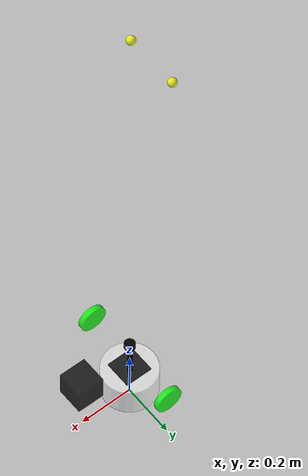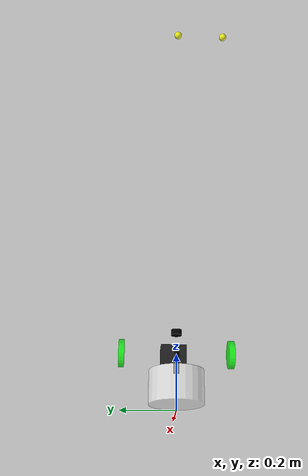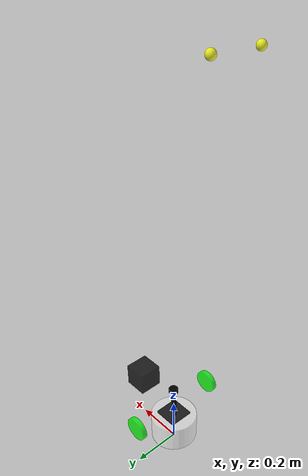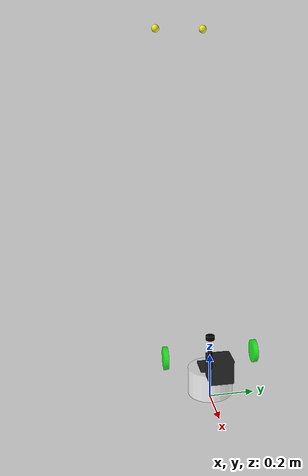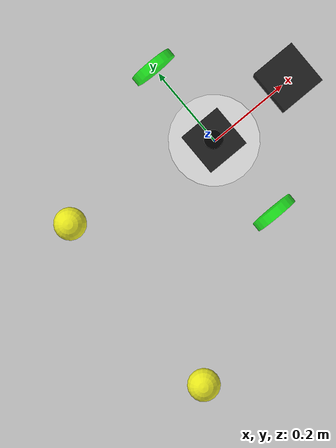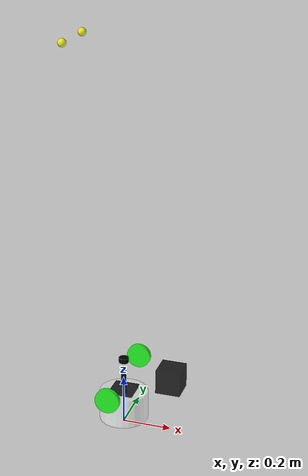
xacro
<?xml version="1.0"?>
<robot xmlns:xacro="http://www.ros.org/wiki/xacro" name="bot">

<xacro:include filename="$(find description)/urdf/bot/base.urdf.xacro"/>
<xacro:include filename="$(find description)/urdf/bot/sensors/laser.urdf.xacro"/>
<xacro:include filename="$(find description)/urdf/bot/sensors/camera.urdf.xacro"/>
<xacro:include filename="$(find description)/urdf/bot/sensors/imu.urdf.xacro"/>
<xacro:include filename="$(find description)/urdf/bot/actuators/wheel.urdf.xacro"/>
<xacro:include filename="$(find description)/urdf/bot/actuators/caster.urdf.xacro"/>
<xacro:include filename="$(find description)/urdf/bot/plugin/common_inertial.urdf.xacro"/>
<xacro:include filename="$(find description)/urdf/bot/plugin/gz_control_plugin.xacro"/>
<xacro:include filename="$(find description)/urdf/bot/plugin/gz_sensors_plugin.xacro"/>

<xacro:base_xacro length="0.12" radius="0.10"/>
<xacro:lidar_xacro xyz="0 0 0.1" />
<xacro:camera_xacro xyz="0.10 0 0.075" />
<xacro:imu_xacro xyz="0 0 0.01" />
<xacro:wheel_xacro wheel_name="wheel_left" xyz="0 0.1 0.06" />
<xacro:wheel_xacro wheel_name="wheel_right" xyz="0 -0.1 0.06" />
<xacro:caster_xacro caster_name="caster_front" xyz="-0.08 0 0.76" />
<xacro:caster_xacro caster_name="caster_right" xyz="-0.08 -0.1 0.76" />

<xacro:gazebo_control_plugin/>
<xacro:gazebo_sensor_plugin/>

</robot>

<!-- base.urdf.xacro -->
<robot xmlns:xacro="http://www.ros.org/wiki/xacro">
    <xacro:macro name="base_xacro" params="length radius">
        <!-- 虚拟 -->
        <link name="base_foot_print"/>
        <link name="base_link">
            <visual>
                <origin rpy="0 0 0" xyz="0 0 0"/>
                <geometry>
                    <cylinder radius="${radius}" length="${length}"/>
                </geometry>
                <material name="white">
                    <color rgba="1.0 1.0 1.0 0.5"/>
                </material>
            </visual>
            <!-- 碰撞 -->
            <collision>
                <origin rpy="0 0 0" xyz="0 0 0"/>
                <geometry>
                    <cylinder radius="${radius}" length="${length}"/>
                </geometry>
                <material name="white">
                    <color rgba="1.0 1.0 1.0 0.5"/>
                </material>
            </collision>
            <!-- 质量(惯性) -->
            <xacro:cylinder_inertia m="1.0" r="${radius}" h="${length}"/>
        </link>
        <joint name="base_print_joint" type="fixed">
            <parent link="base_foot_print"/>
            <child link="base_link"/>
            <origin rpy="0 0 0" xyz="0 0 ${length/2+0.032-0.01}"/>
        </joint>
    </xacro:macro>
</robot>

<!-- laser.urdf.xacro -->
<robot xmlns:xacro="http://www.ros.org/wiki/xacro">
    <!-- 声明lidar -->
    <xacro:macro name="lidar_xacro" params="xyz">
    <!-- 支撑杆 -->
        <link name="lidar_bear_link">
            <visual>
                <origin rpy="0 0 0" xyz="0 0 0"/>
                <geometry>
                    <cylinder radius="0.01" length="0.10"/>
                </geometry>
                <material name="black">
                    <color rgba="0.0 0.0 0.0 1.0"/>
                </material>
            </visual>
        </link>
        <!-- 本体 -->
        <link name="lidar_link">
            <visual>
                <origin rpy="0 0 0" xyz="0 0 0"/>
                <geometry>
                    <cylinder radius="0.02" length="0.02"/>
                </geometry>
                <material name="black">
                    <color rgba="0.0 0.0 0.0 1.0"/>
                </material>
            </visual>
        </link>
        <!-- laser-支撑 -->
        <joint name="lidar_joint" type="fixed">
            <parent link="lidar_bear_link"/>
            <child link="lidar_link"/>
            <origin rpy="0 0 0" xyz="${xyz}"/>
        </joint>
        <!-- 支撑-base -->
        <joint name="lidar_bear_joint" type="fixed">
            <parent link="base_link"/>
            <child link="lidar_bear_link"/>
            <origin rpy="0 0 0" xyz="${xyz}"/>
        </joint>
        <gazebo reference="lidar_bear_link">
            <material>Gazebo/Black</material>
        </gazebo>
        <gazebo reference="lidar_link">
            <material>Gazebo/Black</material>
        </gazebo>
    </xacro:macro>
</robot>

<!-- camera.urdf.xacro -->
<robot xmlns:xacro="http://www.ros.org/wiki/xacro">
    <!-- 声明camera -->
    <xacro:macro name="camera_xacro" params="xyz">
        <link name="camera_link">
            <visual>
                <origin rpy="0 0 0" xyz="${xyz}"/>
                <geometry>
                    <box size="0.1 0.1 0.1"/>
                </geometry>
                <material name="black">
                    <color rgba="0.0 0.0 0.0 0.8"/>
                </material>
            </visual>
        </link>

        <joint name="camera_joint" type="fixed">
            <parent link="base_link"/>
            <child link="camera_link"/>
            <origin rpy="0 0 0" xyz="${xyz}"/>
        </joint>
    </xacro:macro>
</robot>

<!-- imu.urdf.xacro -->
<robot xmlns:xacro="http://www.ros.org/wiki/xacro">
    <xacro:macro name="imu_xacro" params="xyz">
        <link name="imu_link">
            <visual>
                <origin rpy="0 0 0" xyz="${xyz}"/>
                <geometry>
                    <box size="0.1 0.1 0.1"/>
                </geometry>
                <material name="black">
                    <color rgba="0.0 0.0 0.0 0.8"/>
                </material>
            </visual>
        </link>

        <joint name="imu_joint" type="fixed">
            <parent link="base_link"/>
            <child link="imu_link"/>
            <origin rpy="0 0 0" xyz="${xyz}"/>
        </joint>
    </xacro:macro>
</robot>

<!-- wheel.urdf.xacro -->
<robot xmlns:xacro="http://www.ros.org/wiki/xacro">
    <xacro:macro name="wheel_xacro" params="wheel_name xyz">
        <link name="${wheel_name}_link">
            <visual>
                <origin rpy="1.5708 0 0" xyz="${xyz}"/>
                <geometry>
                    <cylinder radius="0.05" length="0.02" />
                </geometry>
                <material name="green">
                    <color rgba="0.0 1.0 0.0 0.8"/>
                </material>
            </visual>
        </link>

        <joint name="${wheel_name}_joint" type="continuous">
            <parent link="base_link"/>
            <child link="${wheel_name}_link"/>
            <origin rpy="0 0 0" xyz="${xyz}"/>
            <axis xyz="0 1 0"/>
        </joint>
        <gazebo reference="${wheel_name}_link">
            <material>Gazebo/green</material>
            <!-- 摩擦系数（1：切向；2：法向） -->
            <mu1 value="20"/>
            <mu2 value="20"/>
            <!-- 刚度 -->
            <kp value="1000000000"/>
            <!-- 阻尼 -->
            <kd value="20"/>
        </gazebo>
    </xacro:macro>
</robot>

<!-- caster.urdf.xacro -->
<robot xmlns:xacro="http://www.ros.org/wiki/xacro">
    <xacro:macro name="caster_xacro" params="caster_name xyz">
        <link name="${caster_name}_link">
            <visual>
                <origin rpy="0 0 0" xyz="${xyz}"/>
                <geometry>
                    <sphere radius="0.016" />
                </geometry>
                <material name="yellow">
                    <color rgba="1.0 1.0 0.0 0.8"/>
                </material>
            </visual>
        </link>

        <joint name="${caster_name}_joint" type="fixed">
            <parent link="base_link"/>
            <child link="${caster_name}_link"/>
            <origin rpy="0 0 0" xyz="${xyz}"/>
        </joint>
    </xacro:macro>
</robot>
